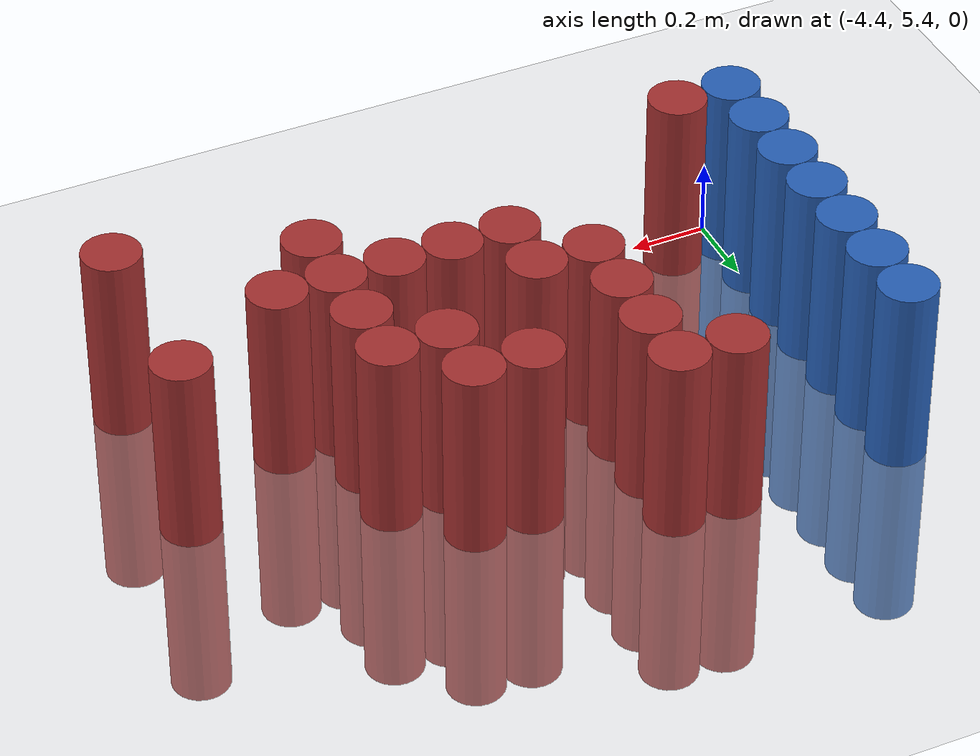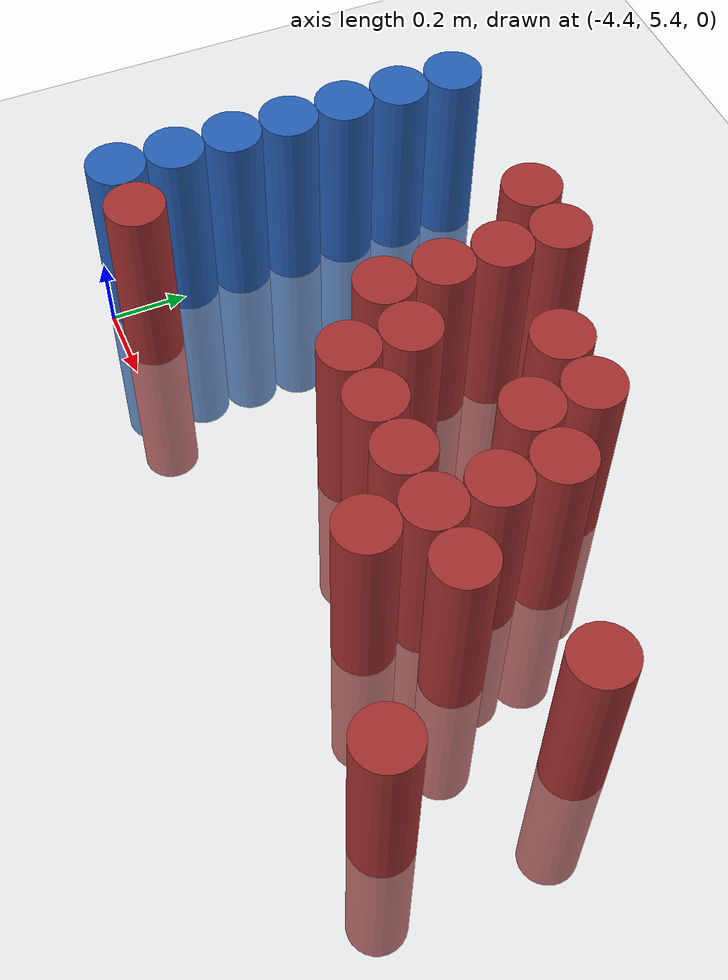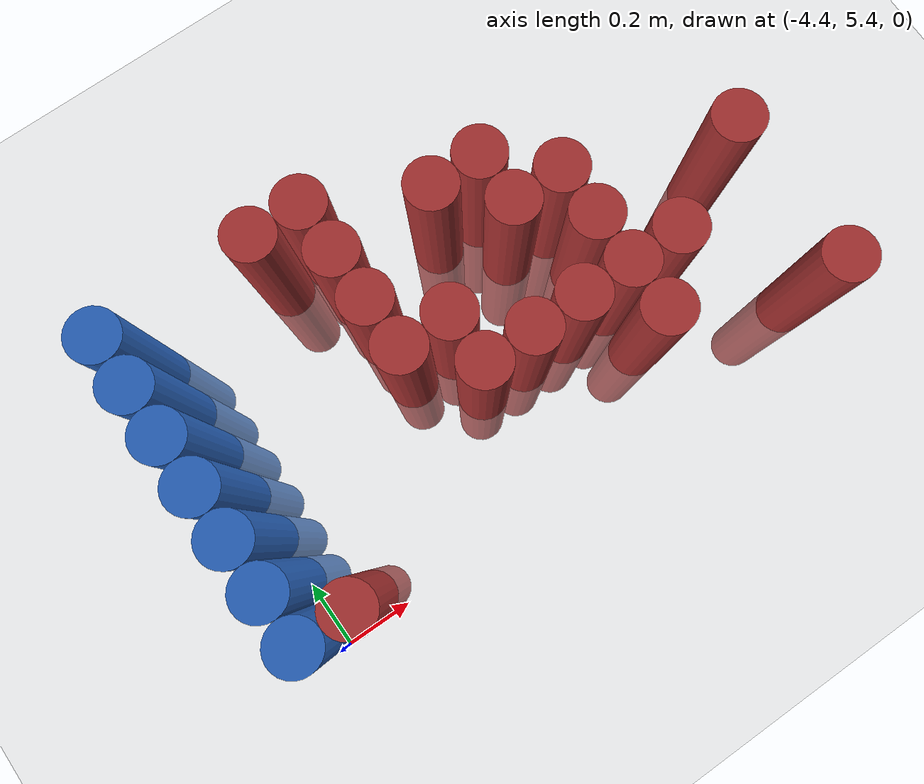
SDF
<sdf version="1.6">
 <world name="world_183">
  <model name="ground_plane">
   <static>1</static>
   <link name="link">
    <collision name="collision">
     <geometry><plane><normal>0 0 1</normal><size>100 100</size></plane></geometry>
     <surface><friction><ode><mu>100</mu><mu2>50</mu2></ode></friction></surface>
    </collision>
    <visual name="visual">
     <cast_shadows>0</cast_shadows>
     <geometry><plane><normal>0 0 1</normal><size>100 100</size></plane></geometry>
     <material>
      <script><uri>file://media/materials/scripts/gazebo.material</uri><name>Gazebo/Grey</name></script>
     </material>
    </visual>
   </link>
  </model>
  <model name="unit_cylinder_98">
   <static>1</static>
   <pose>-4.425000 5.475000 0.000000 0.000000 0.000000 0.000000</pose>
   <link name="link">
    <inertial>
     <mass>1</mass>
     <inertia><ixx>0.145833</ixx><ixy>0</ixy><ixz>0</ixz><iyy>0.145833</iyy><iyz>0</iyz><izz>0.125</izz></inertia>
    </inertial>
    <collision name="collision">
     <geometry><cylinder><radius>0.075000</radius><length>1</length></cylinder></geometry>
    </collision>
    <visual name="visual">
     <geometry><cylinder><radius>0.075000</radius><length>1</length></cylinder></geometry>
     <material>
      <ambient>0.152000 0.379000 0.720000 1</ambient>
      <diffuse>0.152000 0.379000 0.720000 1</diffuse>
     </material>
     <material>
      <script><name>Gazebo/Grey</name><uri>file://media/materials/scripts/gazebo.material</uri></script>
     </material>
    </visual>
   </link>
  </model>
  <model name="unit_cylinder_99">
   <static>1</static>
   <pose>-4.425000 5.625000 0.000000 0.000000 0.000000 0.000000</pose>
   <link name="link">
    <inertial>
     <mass>1</mass>
     <inertia><ixx>0.145833</ixx><ixy>0</ixy><ixz>0</ixz><iyy>0.145833</iyy><iyz>0</iyz><izz>0.125</izz></inertia>
    </inertial>
    <collision name="collision">
     <geometry><cylinder><radius>0.075000</radius><length>1</length></cylinder></geometry>
    </collision>
    <visual name="visual">
     <geometry><cylinder><radius>0.075000</radius><length>1</length></cylinder></geometry>
     <material>
      <ambient>0.152000 0.379000 0.720000 1</ambient>
      <diffuse>0.152000 0.379000 0.720000 1</diffuse>
     </material>
     <material>
      <script><name>Gazebo/Grey</name><uri>file://media/materials/scripts/gazebo.material</uri></script>
     </material>
    </visual>
   </link>
  </model>
  <model name="unit_cylinder_100">
   <static>1</static>
   <pose>-4.425000 5.775000 0.000000 0.000000 0.000000 0.000000</pose>
   <link name="link">
    <inertial>
     <mass>1</mass>
     <inertia><ixx>0.145833</ixx><ixy>0</ixy><ixz>0</ixz><iyy>0.145833</iyy><iyz>0</iyz><izz>0.125</izz></inertia>
    </inertial>
    <collision name="collision">
     <geometry><cylinder><radius>0.075000</radius><length>1</length></cylinder></geometry>
    </collision>
    <visual name="visual">
     <geometry><cylinder><radius>0.075000</radius><length>1</length></cylinder></geometry>
     <material>
      <ambient>0.152000 0.379000 0.720000 1</ambient>
      <diffuse>0.152000 0.379000 0.720000 1</diffuse>
     </material>
     <material>
      <script><name>Gazebo/Grey</name><uri>file://media/materials/scripts/gazebo.material</uri></script>
     </material>
    </visual>
   </link>
  </model>
  <model name="unit_cylinder_101">
   <static>1</static>
   <pose>-4.425000 5.925000 0.000000 0.000000 0.000000 0.000000</pose>
   <link name="link">
    <inertial>
     <mass>1</mass>
     <inertia><ixx>0.145833</ixx><ixy>0</ixy><ixz>0</ixz><iyy>0.145833</iyy><iyz>0</iyz><izz>0.125</izz></inertia>
    </inertial>
    <collision name="collision">
     <geometry><cylinder><radius>0.075000</radius><length>1</length></cylinder></geometry>
    </collision>
    <visual name="visual">
     <geometry><cylinder><radius>0.075000</radius><length>1</length></cylinder></geometry>
     <material>
      <ambient>0.152000 0.379000 0.720000 1</ambient>
      <diffuse>0.152000 0.379000 0.720000 1</diffuse>
     </material>
     <material>
      <script><name>Gazebo/Grey</name><uri>file://media/materials/scripts/gazebo.material</uri></script>
     </material>
    </visual>
   </link>
  </model>
  <model name="unit_cylinder_102">
   <static>1</static>
   <pose>-4.425000 6.075000 0.000000 0.000000 0.000000 0.000000</pose>
   <link name="link">
    <inertial>
     <mass>1</mass>
     <inertia><ixx>0.145833</ixx><ixy>0</ixy><ixz>0</ixz><iyy>0.145833</iyy><iyz>0</iyz><izz>0.125</izz></inertia>
    </inertial>
    <collision name="collision">
     <geometry><cylinder><radius>0.075000</radius><length>1</length></cylinder></geometry>
    </collision>
    <visual name="visual">
     <geometry><cylinder><radius>0.075000</radius><length>1</length></cylinder></geometry>
     <material>
      <ambient>0.152000 0.379000 0.720000 1</ambient>
      <diffuse>0.152000 0.379000 0.720000 1</diffuse>
     </material>
     <material>
      <script><name>Gazebo/Grey</name><uri>file://media/materials/scripts/gazebo.material</uri></script>
     </material>
    </visual>
   </link>
  </model>
  <model name="unit_cylinder_103">
   <static>1</static>
   <pose>-4.425000 6.225000 0.000000 0.000000 0.000000 0.000000</pose>
   <link name="link">
    <inertial>
     <mass>1</mass>
     <inertia><ixx>0.145833</ixx><ixy>0</ixy><ixz>0</ixz><iyy>0.145833</iyy><iyz>0</iyz><izz>0.125</izz></inertia>
    </inertial>
    <collision name="collision">
     <geometry><cylinder><radius>0.075000</radius><length>1</length></cylinder></geometry>
    </collision>
    <visual name="visual">
     <geometry><cylinder><radius>0.075000</radius><length>1</length></cylinder></geometry>
     <material>
      <ambient>0.152000 0.379000 0.720000 1</ambient>
      <diffuse>0.152000 0.379000 0.720000 1</diffuse>
     </material>
     <material>
      <script><name>Gazebo/Grey</name><uri>file://media/materials/scripts/gazebo.material</uri></script>
     </material>
    </visual>
   </link>
  </model>
  <model name="unit_cylinder_104">
   <static>1</static>
   <pose>-4.425000 6.375000 0.000000 0.000000 0.000000 0.000000</pose>
   <link name="link">
    <inertial>
     <mass>1</mass>
     <inertia><ixx>0.145833</ixx><ixy>0</ixy><ixz>0</ixz><iyy>0.145833</iyy><iyz>0</iyz><izz>0.125</izz></inertia>
    </inertial>
    <collision name="collision">
     <geometry><cylinder><radius>0.075000</radius><length>1</length></cylinder></geometry>
    </collision>
    <visual name="visual">
     <geometry><cylinder><radius>0.075000</radius><length>1</length></cylinder></geometry>
     <material>
      <ambient>0.152000 0.379000 0.720000 1</ambient>
      <diffuse>0.152000 0.379000 0.720000 1</diffuse>
     </material>
     <material>
      <script><name>Gazebo/Grey</name><uri>file://media/materials/scripts/gazebo.material</uri></script>
     </material>
    </visual>
   </link>
  </model>
  <model name="unit_cylinder_128">
   <static>1</static>
   <pose>-4.275000 5.475000 0.000000 0.000000 0.000000 0.000000</pose>
   <link name="link">
    <inertial>
     <mass>1</mass>
     <inertia><ixx>0.145833</ixx><ixy>0</ixy><ixz>0</ixz><iyy>0.145833</iyy><iyz>0</iyz><izz>0.125</izz></inertia>
    </inertial>
    <collision name="collision">
     <geometry><cylinder><radius>0.075000</radius><length>1</length></cylinder></geometry>
    </collision>
    <visual name="visual">
     <geometry><cylinder><radius>0.075000</radius><length>1</length></cylinder></geometry>
     <material>
      <ambient>0.648000 0.192000 0.192000 1</ambient>
      <diffuse>0.648000 0.192000 0.192000 1</diffuse>
     </material>
     <material>
      <script><name>Gazebo/Grey</name><uri>file://media/materials/scripts/gazebo.material</uri></script>
     </material>
    </visual>
   </link>
  </model>
  <model name="unit_cylinder_143">
   <static>1</static>
   <pose>-3.975000 6.375000 0.000000 0.000000 0.000000 0.000000</pose>
   <link name="link">
    <inertial>
     <mass>1</mass>
     <inertia><ixx>0.145833</ixx><ixy>0</ixy><ixz>0</ixz><iyy>0.145833</iyy><iyz>0</iyz><izz>0.125</izz></inertia>
    </inertial>
    <collision name="collision">
     <geometry><cylinder><radius>0.075000</radius><length>1</length></cylinder></geometry>
    </collision>
    <visual name="visual">
     <geometry><cylinder><radius>0.075000</radius><length>1</length></cylinder></geometry>
     <material>
      <ambient>0.648000 0.192000 0.192000 1</ambient>
      <diffuse>0.648000 0.192000 0.192000 1</diffuse>
     </material>
     <material>
      <script><name>Gazebo/Grey</name><uri>file://media/materials/scripts/gazebo.material</uri></script>
     </material>
    </visual>
   </link>
  </model>
  <model name="unit_cylinder_151">
   <static>1</static>
   <pose>-3.825000 5.925000 0.000000 0.000000 0.000000 0.000000</pose>
   <link name="link">
    <inertial>
     <mass>1</mass>
     <inertia><ixx>0.145833</ixx><ixy>0</ixy><ixz>0</ixz><iyy>0.145833</iyy><iyz>0</iyz><izz>0.125</izz></inertia>
    </inertial>
    <collision name="collision">
     <geometry><cylinder><radius>0.075000</radius><length>1</length></cylinder></geometry>
    </collision>
    <visual name="visual">
     <geometry><cylinder><radius>0.075000</radius><length>1</length></cylinder></geometry>
     <material>
      <ambient>0.648000 0.192000 0.192000 1</ambient>
      <diffuse>0.648000 0.192000 0.192000 1</diffuse>
     </material>
     <material>
      <script><name>Gazebo/Grey</name><uri>file://media/materials/scripts/gazebo.material</uri></script>
     </material>
    </visual>
   </link>
  </model>
  <model name="unit_cylinder_152">
   <static>1</static>
   <pose>-3.825000 6.075000 0.000000 0.000000 0.000000 0.000000</pose>
   <link name="link">
    <inertial>
     <mass>1</mass>
     <inertia><ixx>0.145833</ixx><ixy>0</ixy><ixz>0</ixz><iyy>0.145833</iyy><iyz>0</iyz><izz>0.125</izz></inertia>
    </inertial>
    <collision name="collision">
     <geometry><cylinder><radius>0.075000</radius><length>1</length></cylinder></geometry>
    </collision>
    <visual name="visual">
     <geometry><cylinder><radius>0.075000</radius><length>1</length></cylinder></geometry>
     <material>
      <ambient>0.648000 0.192000 0.192000 1</ambient>
      <diffuse>0.648000 0.192000 0.192000 1</diffuse>
     </material>
     <material>
      <script><name>Gazebo/Grey</name><uri>file://media/materials/scripts/gazebo.material</uri></script>
     </material>
    </visual>
   </link>
  </model>
  <model name="unit_cylinder_153">
   <static>1</static>
   <pose>-3.825000 6.225000 0.000000 0.000000 0.000000 0.000000</pose>
   <link name="link">
    <inertial>
     <mass>1</mass>
     <inertia><ixx>0.145833</ixx><ixy>0</ixy><ixz>0</ixz><iyy>0.145833</iyy><iyz>0</iyz><izz>0.125</izz></inertia>
    </inertial>
    <collision name="collision">
     <geometry><cylinder><radius>0.075000</radius><length>1</length></cylinder></geometry>
    </collision>
    <visual name="visual">
     <geometry><cylinder><radius>0.075000</radius><length>1</length></cylinder></geometry>
     <material>
      <ambient>0.648000 0.192000 0.192000 1</ambient>
      <diffuse>0.648000 0.192000 0.192000 1</diffuse>
     </material>
     <material>
      <script><name>Gazebo/Grey</name><uri>file://media/materials/scripts/gazebo.material</uri></script>
     </material>
    </visual>
   </link>
  </model>
  <model name="unit_cylinder_154">
   <static>1</static>
   <pose>-3.825000 6.375000 0.000000 0.000000 0.000000 0.000000</pose>
   <link name="link">
    <inertial>
     <mass>1</mass>
     <inertia><ixx>0.145833</ixx><ixy>0</ixy><ixz>0</ixz><iyy>0.145833</iyy><iyz>0</iyz><izz>0.125</izz></inertia>
    </inertial>
    <collision name="collision">
     <geometry><cylinder><radius>0.075000</radius><length>1</length></cylinder></geometry>
    </collision>
    <visual name="visual">
     <geometry><cylinder><radius>0.075000</radius><length>1</length></cylinder></geometry>
     <material>
      <ambient>0.648000 0.192000 0.192000 1</ambient>
      <diffuse>0.648000 0.192000 0.192000 1</diffuse>
     </material>
     <material>
      <script><name>Gazebo/Grey</name><uri>file://media/materials/scripts/gazebo.material</uri></script>
     </material>
    </visual>
   </link>
  </model>
  <model name="unit_cylinder_163">
   <static>1</static>
   <pose>-3.675000 5.775000 0.000000 0.000000 0.000000 0.000000</pose>
   <link name="link">
    <inertial>
     <mass>1</mass>
     <inertia><ixx>0.145833</ixx><ixy>0</ixy><ixz>0</ixz><iyy>0.145833</iyy><iyz>0</iyz><izz>0.125</izz></inertia>
    </inertial>
    <collision name="collision">
     <geometry><cylinder><radius>0.075000</radius><length>1</length></cylinder></geometry>
    </collision>
    <visual name="visual">
     <geometry><cylinder><radius>0.075000</radius><length>1</length></cylinder></geometry>
     <material>
      <ambient>0.648000 0.192000 0.192000 1</ambient>
      <diffuse>0.648000 0.192000 0.192000 1</diffuse>
     </material>
     <material>
      <script><name>Gazebo/Grey</name><uri>file://media/materials/scripts/gazebo.material</uri></script>
     </material>
    </visual>
   </link>
  </model>
  <model name="unit_cylinder_164">
   <static>1</static>
   <pose>-3.675000 5.925000 0.000000 0.000000 0.000000 0.000000</pose>
   <link name="link">
    <inertial>
     <mass>1</mass>
     <inertia><ixx>0.145833</ixx><ixy>0</ixy><ixz>0</ixz><iyy>0.145833</iyy><iyz>0</iyz><izz>0.125</izz></inertia>
    </inertial>
    <collision name="collision">
     <geometry><cylinder><radius>0.075000</radius><length>1</length></cylinder></geometry>
    </collision>
    <visual name="visual">
     <geometry><cylinder><radius>0.075000</radius><length>1</length></cylinder></geometry>
     <material>
      <ambient>0.648000 0.192000 0.192000 1</ambient>
      <diffuse>0.648000 0.192000 0.192000 1</diffuse>
     </material>
     <material>
      <script><name>Gazebo/Grey</name><uri>file://media/materials/scripts/gazebo.material</uri></script>
     </material>
    </visual>
   </link>
  </model>
  <model name="unit_cylinder_171">
   <static>1</static>
   <pose>-3.525000 5.775000 0.000000 0.000000 0.000000 0.000000</pose>
   <link name="link">
    <inertial>
     <mass>1</mass>
     <inertia><ixx>0.145833</ixx><ixy>0</ixy><ixz>0</ixz><iyy>0.145833</iyy><iyz>0</iyz><izz>0.125</izz></inertia>
    </inertial>
    <collision name="collision">
     <geometry><cylinder><radius>0.075000</radius><length>1</length></cylinder></geometry>
    </collision>
    <visual name="visual">
     <geometry><cylinder><radius>0.075000</radius><length>1</length></cylinder></geometry>
     <material>
      <ambient>0.648000 0.192000 0.192000 1</ambient>
      <diffuse>0.648000 0.192000 0.192000 1</diffuse>
     </material>
     <material>
      <script><name>Gazebo/Grey</name><uri>file://media/materials/scripts/gazebo.material</uri></script>
     </material>
    </visual>
   </link>
  </model>
  <model name="unit_cylinder_172">
   <static>1</static>
   <pose>-3.525000 6.225000 0.000000 0.000000 0.000000 0.000000</pose>
   <link name="link">
    <inertial>
     <mass>1</mass>
     <inertia><ixx>0.145833</ixx><ixy>0</ixy><ixz>0</ixz><iyy>0.145833</iyy><iyz>0</iyz><izz>0.125</izz></inertia>
    </inertial>
    <collision name="collision">
     <geometry><cylinder><radius>0.075000</radius><length>1</length></cylinder></geometry>
    </collision>
    <visual name="visual">
     <geometry><cylinder><radius>0.075000</radius><length>1</length></cylinder></geometry>
     <material>
      <ambient>0.648000 0.192000 0.192000 1</ambient>
      <diffuse>0.648000 0.192000 0.192000 1</diffuse>
     </material>
     <material>
      <script><name>Gazebo/Grey</name><uri>file://media/materials/scripts/gazebo.material</uri></script>
     </material>
    </visual>
   </link>
  </model>
  <model name="unit_cylinder_183">
   <static>1</static>
   <pose>-3.375000 5.775000 0.000000 0.000000 0.000000 0.000000</pose>
   <link name="link">
    <inertial>
     <mass>1</mass>
     <inertia><ixx>0.145833</ixx><ixy>0</ixy><ixz>0</ixz><iyy>0.145833</iyy><iyz>0</iyz><izz>0.125</izz></inertia>
    </inertial>
    <collision name="collision">
     <geometry><cylinder><radius>0.075000</radius><length>1</length></cylinder></geometry>
    </collision>
    <visual name="visual">
     <geometry><cylinder><radius>0.075000</radius><length>1</length></cylinder></geometry>
     <material>
      <ambient>0.648000 0.192000 0.192000 1</ambient>
      <diffuse>0.648000 0.192000 0.192000 1</diffuse>
     </material>
     <material>
      <script><name>Gazebo/Grey</name><uri>file://media/materials/scripts/gazebo.material</uri></script>
     </material>
    </visual>
   </link>
  </model>
  <model name="unit_cylinder_184">
   <static>1</static>
   <pose>-3.375000 6.075000 0.000000 0.000000 0.000000 0.000000</pose>
   <link name="link">
    <inertial>
     <mass>1</mass>
     <inertia><ixx>0.145833</ixx><ixy>0</ixy><ixz>0</ixz><iyy>0.145833</iyy><iyz>0</iyz><izz>0.125</izz></inertia>
    </inertial>
    <collision name="collision">
     <geometry><cylinder><radius>0.075000</radius><length>1</length></cylinder></geometry>
    </collision>
    <visual name="visual">
     <geometry><cylinder><radius>0.075000</radius><length>1</length></cylinder></geometry>
     <material>
      <ambient>0.648000 0.192000 0.192000 1</ambient>
      <diffuse>0.648000 0.192000 0.192000 1</diffuse>
     </material>
     <material>
      <script><name>Gazebo/Grey</name><uri>file://media/materials/scripts/gazebo.material</uri></script>
     </material>
    </visual>
   </link>
  </model>
  <model name="unit_cylinder_185">
   <static>1</static>
   <pose>-3.375000 6.225000 0.000000 0.000000 0.000000 0.000000</pose>
   <link name="link">
    <inertial>
     <mass>1</mass>
     <inertia><ixx>0.145833</ixx><ixy>0</ixy><ixz>0</ixz><iyy>0.145833</iyy><iyz>0</iyz><izz>0.125</izz></inertia>
    </inertial>
    <collision name="collision">
     <geometry><cylinder><radius>0.075000</radius><length>1</length></cylinder></geometry>
    </collision>
    <visual name="visual">
     <geometry><cylinder><radius>0.075000</radius><length>1</length></cylinder></geometry>
     <material>
      <ambient>0.648000 0.192000 0.192000 1</ambient>
      <diffuse>0.648000 0.192000 0.192000 1</diffuse>
     </material>
     <material>
      <script><name>Gazebo/Grey</name><uri>file://media/materials/scripts/gazebo.material</uri></script>
     </material>
    </visual>
   </link>
  </model>
  <model name="unit_cylinder_191">
   <static>1</static>
   <pose>-3.225000 5.625000 0.000000 0.000000 0.000000 0.000000</pose>
   <link name="link">
    <inertial>
     <mass>1</mass>
     <inertia><ixx>0.145833</ixx><ixy>0</ixy><ixz>0</ixz><iyy>0.145833</iyy><iyz>0</iyz><izz>0.125</izz></inertia>
    </inertial>
    <collision name="collision">
     <geometry><cylinder><radius>0.075000</radius><length>1</length></cylinder></geometry>
    </collision>
    <visual name="visual">
     <geometry><cylinder><radius>0.075000</radius><length>1</length></cylinder></geometry>
     <material>
      <ambient>0.648000 0.192000 0.192000 1</ambient>
      <diffuse>0.648000 0.192000 0.192000 1</diffuse>
     </material>
     <material>
      <script><name>Gazebo/Grey</name><uri>file://media/materials/scripts/gazebo.material</uri></script>
     </material>
    </visual>
   </link>
  </model>
  <model name="unit_cylinder_192">
   <static>1</static>
   <pose>-3.225000 5.775000 0.000000 0.000000 0.000000 0.000000</pose>
   <link name="link">
    <inertial>
     <mass>1</mass>
     <inertia><ixx>0.145833</ixx><ixy>0</ixy><ixz>0</ixz><iyy>0.145833</iyy><iyz>0</iyz><izz>0.125</izz></inertia>
    </inertial>
    <collision name="collision">
     <geometry><cylinder><radius>0.075000</radius><length>1</length></cylinder></geometry>
    </collision>
    <visual name="visual">
     <geometry><cylinder><radius>0.075000</radius><length>1</length></cylinder></geometry>
     <material>
      <ambient>0.648000 0.192000 0.192000 1</ambient>
      <diffuse>0.648000 0.192000 0.192000 1</diffuse>
     </material>
     <material>
      <script><name>Gazebo/Grey</name><uri>file://media/materials/scripts/gazebo.material</uri></script>
     </material>
    </visual>
   </link>
  </model>
  <model name="unit_cylinder_193">
   <static>1</static>
   <pose>-3.225000 5.925000 0.000000 0.000000 0.000000 0.000000</pose>
   <link name="link">
    <inertial>
     <mass>1</mass>
     <inertia><ixx>0.145833</ixx><ixy>0</ixy><ixz>0</ixz><iyy>0.145833</iyy><iyz>0</iyz><izz>0.125</izz></inertia>
    </inertial>
    <collision name="collision">
     <geometry><cylinder><radius>0.075000</radius><length>1</length></cylinder></geometry>
    </collision>
    <visual name="visual">
     <geometry><cylinder><radius>0.075000</radius><length>1</length></cylinder></geometry>
     <material>
      <ambient>0.648000 0.192000 0.192000 1</ambient>
      <diffuse>0.648000 0.192000 0.192000 1</diffuse>
     </material>
     <material>
      <script><name>Gazebo/Grey</name><uri>file://media/materials/scripts/gazebo.material</uri></script>
     </material>
    </visual>
   </link>
  </model>
  <model name="unit_cylinder_194">
   <static>1</static>
   <pose>-3.225000 6.075000 0.000000 0.000000 0.000000 0.000000</pose>
   <link name="link">
    <inertial>
     <mass>1</mass>
     <inertia><ixx>0.145833</ixx><ixy>0</ixy><ixz>0</ixz><iyy>0.145833</iyy><iyz>0</iyz><izz>0.125</izz></inertia>
    </inertial>
    <collision name="collision">
     <geometry><cylinder><radius>0.075000</radius><length>1</length></cylinder></geometry>
    </collision>
    <visual name="visual">
     <geometry><cylinder><radius>0.075000</radius><length>1</length></cylinder></geometry>
     <material>
      <ambient>0.648000 0.192000 0.192000 1</ambient>
      <diffuse>0.648000 0.192000 0.192000 1</diffuse>
     </material>
     <material>
      <script><name>Gazebo/Grey</name><uri>file://media/materials/scripts/gazebo.material</uri></script>
     </material>
    </visual>
   </link>
  </model>
  <model name="unit_cylinder_196">
   <static>1</static>
   <pose>-3.075000 5.775000 0.000000 0.000000 0.000000 0.000000</pose>
   <link name="link">
    <inertial>
     <mass>1</mass>
     <inertia><ixx>0.145833</ixx><ixy>0</ixy><ixz>0</ixz><iyy>0.145833</iyy><iyz>0</iyz><izz>0.125</izz></inertia>
    </inertial>
    <collision name="collision">
     <geometry><cylinder><radius>0.075000</radius><length>1</length></cylinder></geometry>
    </collision>
    <visual name="visual">
     <geometry><cylinder><radius>0.075000</radius><length>1</length></cylinder></geometry>
     <material>
      <ambient>0.648000 0.192000 0.192000 1</ambient>
      <diffuse>0.648000 0.192000 0.192000 1</diffuse>
     </material>
     <material>
      <script><name>Gazebo/Grey</name><uri>file://media/materials/scripts/gazebo.material</uri></script>
     </material>
    </visual>
   </link>
  </model>
  <model name="unit_cylinder_202">
   <static>1</static>
   <pose>-2.775000 5.475000 0.000000 0.000000 0.000000 0.000000</pose>
   <link name="link">
    <inertial>
     <mass>1</mass>
     <inertia><ixx>0.145833</ixx><ixy>0</ixy><ixz>0</ixz><iyy>0.145833</iyy><iyz>0</iyz><izz>0.125</izz></inertia>
    </inertial>
    <collision name="collision">
     <geometry><cylinder><radius>0.075000</radius><length>1</length></cylinder></geometry>
    </collision>
    <visual name="visual">
     <geometry><cylinder><radius>0.075000</radius><length>1</length></cylinder></geometry>
     <material>
      <ambient>0.648000 0.192000 0.192000 1</ambient>
      <diffuse>0.648000 0.192000 0.192000 1</diffuse>
     </material>
     <material>
      <script><name>Gazebo/Grey</name><uri>file://media/materials/scripts/gazebo.material</uri></script>
     </material>
    </visual>
   </link>
  </model>
  <model name="unit_cylinder_203">
   <static>1</static>
   <pose>-2.775000 5.925000 0.000000 0.000000 0.000000 0.000000</pose>
   <link name="link">
    <inertial>
     <mass>1</mass>
     <inertia><ixx>0.145833</ixx><ixy>0</ixy><ixz>0</ixz><iyy>0.145833</iyy><iyz>0</iyz><izz>0.125</izz></inertia>
    </inertial>
    <collision name="collision">
     <geometry><cylinder><radius>0.075000</radius><length>1</length></cylinder></geometry>
    </collision>
    <visual name="visual">
     <geometry><cylinder><radius>0.075000</radius><length>1</length></cylinder></geometry>
     <material>
      <ambient>0.648000 0.192000 0.192000 1</ambient>
      <diffuse>0.648000 0.192000 0.192000 1</diffuse>
     </material>
     <material>
      <script><name>Gazebo/Grey</name><uri>file://media/materials/scripts/gazebo.material</uri></script>
     </material>
    </visual>
   </link>
  </model>
 </world>
</sdf>
